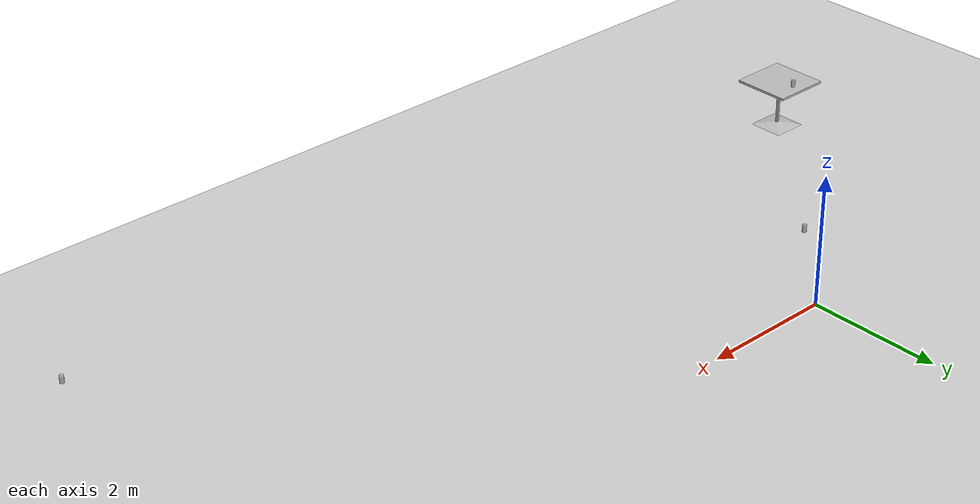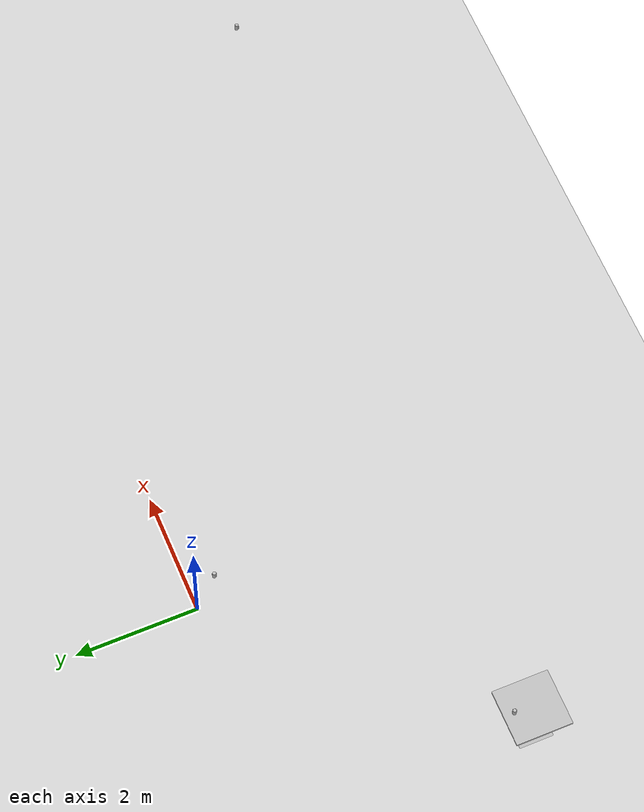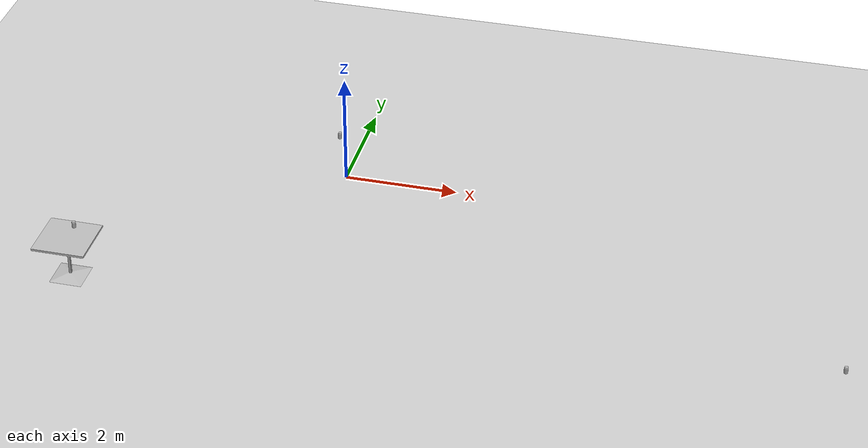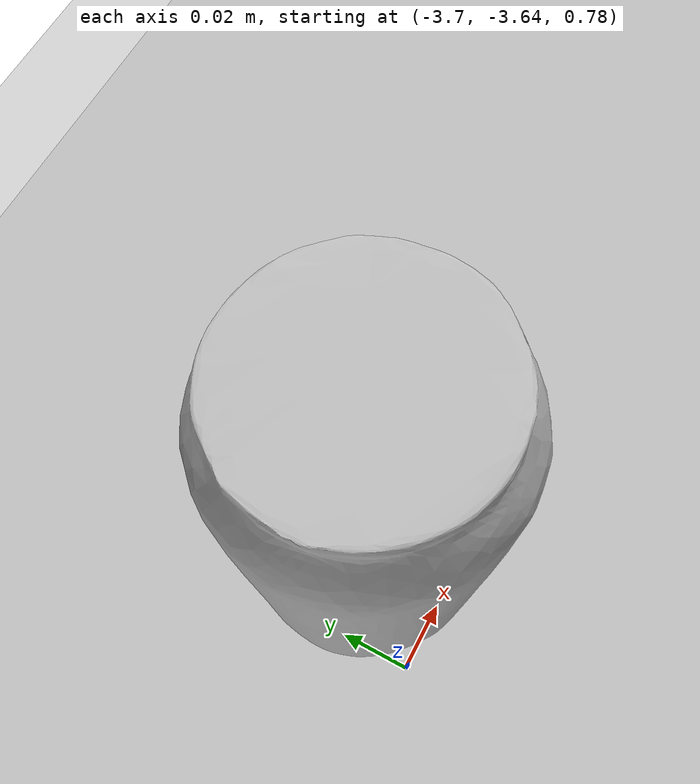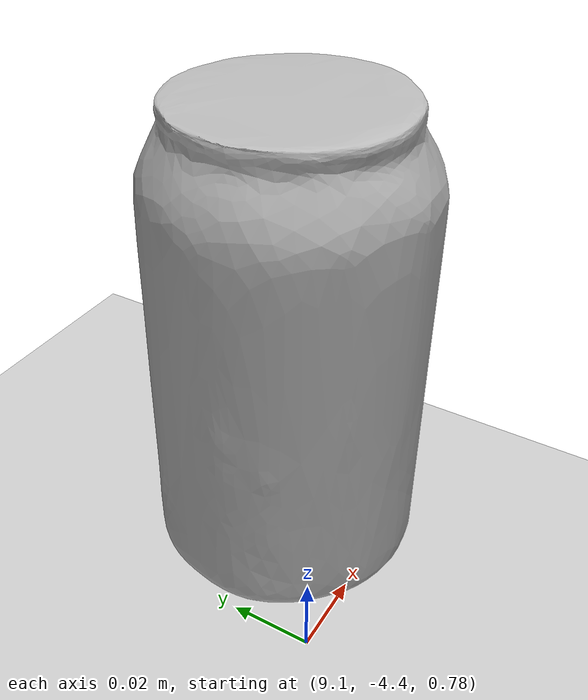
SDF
<sdf version="1.7">
 <world name="default">
  <light name="sun" type="directional">
   <pose>0 0 10 0 -0 0</pose>
   <diffuse>0.8 0.8 0.8 1</diffuse>
   <specular>0.2 0.2 0.2 1</specular>
   <attenuation>
    <range>1000</range>
    <constant>0.9</constant>
    <linear>0.01</linear>
    <quadratic>0.001</quadratic>
   </attenuation>
   <direction>-0.5 0.1 -0.9</direction>
   <spot><inner_angle>0</inner_angle><outer_angle>0</outer_angle><falloff>0</falloff></spot>
  </light>
  <model name="ground_plane">
   <static>1</static>
   <link name="link">
    <collision name="collision">
     <geometry><plane><normal>0 0 1</normal><size>100 100</size></plane></geometry>
     <surface>
      <contact><collide_bitmask>65535</collide_bitmask></contact>
      <friction><ode><mu>100</mu><mu2>50</mu2></ode></friction>
     </surface>
    </collision>
    <visual name="visual">
     <cast_shadows>0</cast_shadows>
     <geometry><plane><normal>0 0 1</normal><size>100 100</size></plane></geometry>
     <material>
      <script><uri>file://media/materials/scripts/gazebo.material</uri><name>Gazebo/Grey</name></script>
     </material>
    </visual>
   </link>
  </model>
  <gravity>0 0 -9.8</gravity>
  <magnetic_field>6e-06 2.3e-05 -4.2e-05</magnetic_field>
  <atmosphere type="adiabatic"/>
  <physics type="ode">
   <max_step_size>0.001</max_step_size>
   <real_time_factor>1</real_time_factor>
   <real_time_update_rate>1000</real_time_update_rate>
  </physics>
  <scene><ambient>0.4 0.4 0.4 1</ambient><background>0.7 0.7 0.7 1</background><shadows>1</shadows></scene>
  <spherical_coordinates>
   <surface_model>EARTH_WGS84</surface_model>
   <latitude_deg>0</latitude_deg>
   <longitude_deg>0</longitude_deg>
   <elevation>0</elevation>
   <heading_deg>0</heading_deg>
  </spherical_coordinates>
  <model name="coke_can">
   <link name="link">
    <inertial>
     <pose>0 0 0.06 0 -0 0</pose>
     <mass>0.39</mass>
     <inertia>
      <ixx>0.00055575</ixx>
      <ixy>0</ixy>
      <ixz>0</ixz>
      <iyy>0.00055575</iyy>
      <iyz>0</iyz>
      <izz>0.0001755</izz>
     </inertia>
    </inertial>
    <collision name="collision">
     <pose>0.003937 0.004724 -0.18 0 -0 0</pose>
     <geometry><mesh><uri>model://coke_can/meshes/coke_can.dae</uri></mesh></geometry>
     <surface>
      <friction><ode><mu>1</mu><mu2>1</mu2></ode></friction>
      <contact><ode><kp>1e+07</kp><kd>1</kd><min_depth>0.001</min_depth><max_vel>0.1</max_vel></ode></contact>
     </surface>
    </collision>
    <visual name="visual">
     <pose>0.003937 0.004724 -0.18 0 -0 0</pose>
     <geometry><mesh><uri>model://coke_can/meshes/coke_can.dae</uri></mesh></geometry>
    </visual>
   </link>
   <pose>-3.67248 -3.61238 0.771592 0.003638 -0.018201 -0.03206</pose>
  </model>
  <model name="cafe_table_1">
   <static>1</static>
   <link name="link">
    <collision name="surface">
     <pose>0 0 0.755 0 -0 0</pose>
     <geometry><box><size>0.913 0.913 0.04</size></box></geometry>
    </collision>
    <collision name="column">
     <pose>0 0 0.37 0 -0 0</pose>
     <geometry><box><size>0.042 0.042 0.74</size></box></geometry>
    </collision>
    <collision name="base">
     <pose>0 0 0.02 0 -0 0</pose>
     <geometry><box><size>0.56 0.56 0.04</size></box></geometry>
    </collision>
    <visual name="visual">
     <geometry><mesh><uri>model://cafe_table/meshes/cafe_table.dae</uri></mesh></geometry>
    </visual>
   </link>
   <pose>-3.69155 -3.8991 0 0 -0 0</pose>
  </model>
  <model name="coke_can_0">
   <link name="link">
    <inertial>
     <pose>0 0 0.06 0 -0 0</pose>
     <mass>0.39</mass>
     <inertia>
      <ixx>0.00055575</ixx>
      <ixy>0</ixy>
      <ixz>0</ixz>
      <iyy>0.00055575</iyy>
      <iyz>0</iyz>
      <izz>0.0001755</izz>
     </inertia>
    </inertial>
    <collision name="collision">
     <pose>0.003937 0.004724 -0.18 0 -0 0</pose>
     <geometry><mesh><uri>model://coke_can/meshes/coke_can.dae</uri></mesh></geometry>
     <surface>
      <friction><ode><mu>1</mu><mu2>1</mu2></ode></friction>
      <contact><ode><kp>1e+07</kp><kd>1</kd><min_depth>0.001</min_depth><max_vel>0.1</max_vel></ode></contact>
     </surface>
    </collision>
    <visual name="visual">
     <pose>0.003937 0.004724 -0.18 0 -0 0</pose>
     <geometry><mesh><uri>model://coke_can/meshes/coke_can.dae</uri></mesh></geometry>
    </visual>
   </link>
   <pose>-0.011716 -0.304781 1.01242 -0.011176 0.004015 -0.10181</pose>
  </model>
  <model name="coke_can_1">
   <link name="link">
    <inertial>
     <pose>0 0 0.06 0 -0 0</pose>
     <mass>0.39</mass>
     <inertia>
      <ixx>0.00055575</ixx>
      <ixy>0</ixy>
      <ixz>0</ixz>
      <iyy>0.00055575</iyy>
      <iyz>0</iyz>
      <izz>0.0001755</izz>
     </inertia>
    </inertial>
    <collision name="collision">
     <pose>0.003937 0.004724 -0.18 0 -0 0</pose>
     <geometry><mesh><uri>model://coke_can/meshes/coke_can.dae</uri></mesh></geometry>
     <surface>
      <friction><ode><mu>1</mu><mu2>1</mu2></ode></friction>
      <contact><ode><kp>1e+07</kp><kd>1</kd><min_depth>0.001</min_depth><max_vel>0.1</max_vel></ode></contact>
     </surface>
    </collision>
    <visual name="visual">
     <pose>0.003937 0.004724 -0.18 0 -0 0</pose>
     <geometry><mesh><uri>model://coke_can/meshes/coke_can.dae</uri></mesh></geometry>
    </visual>
   </link>
   <pose>9.13484 -4.37357 0.771513 0.006486 0.00368 -0.083828</pose>
  </model>
 </world>
</sdf>
